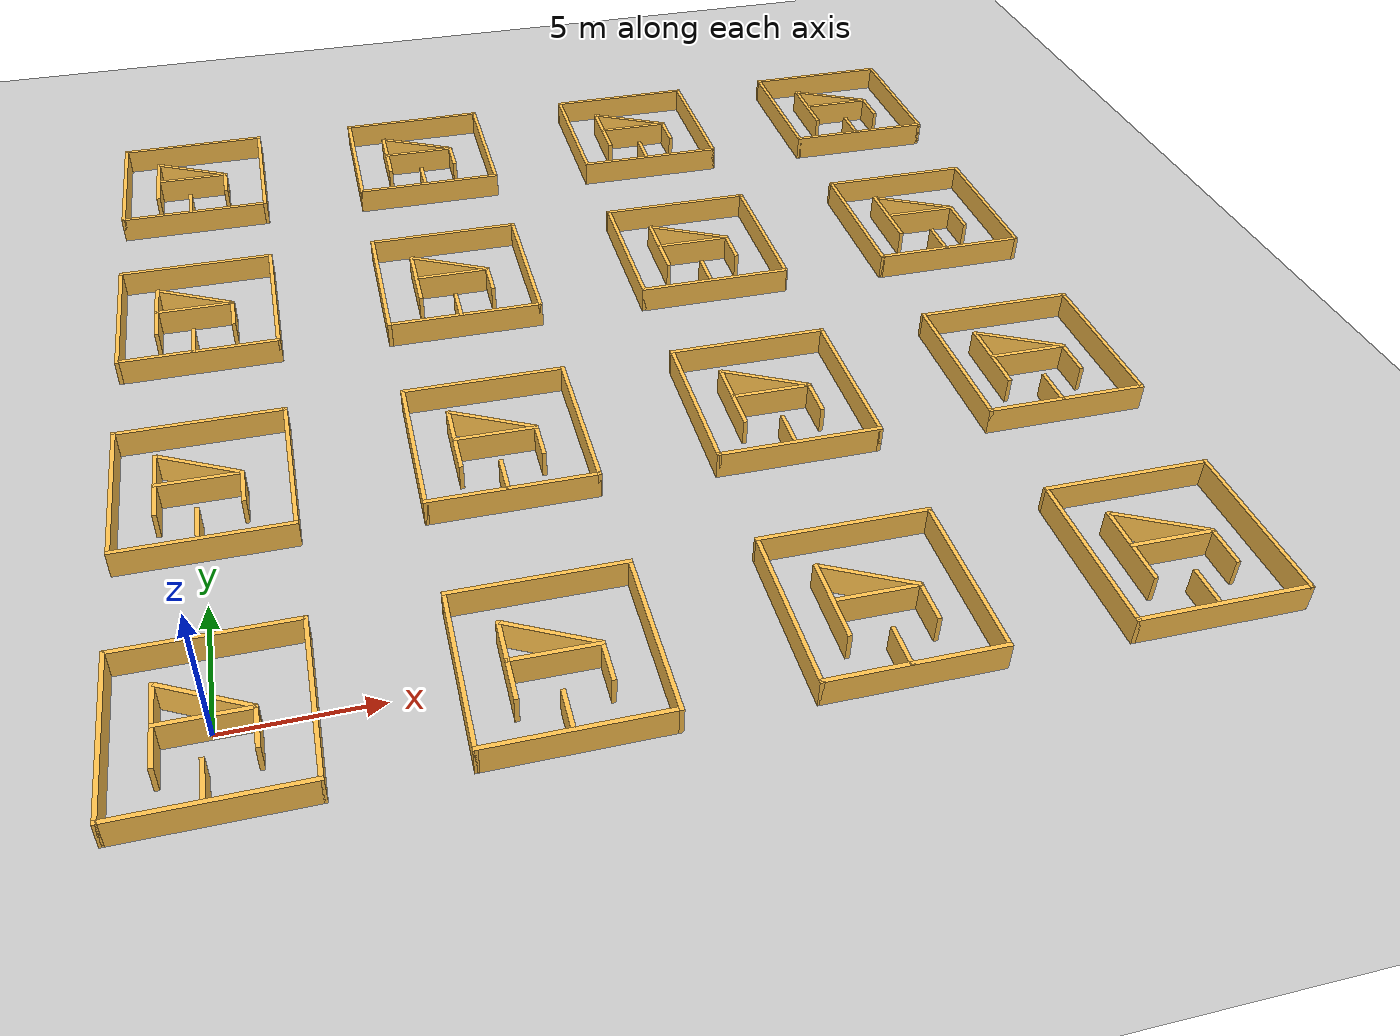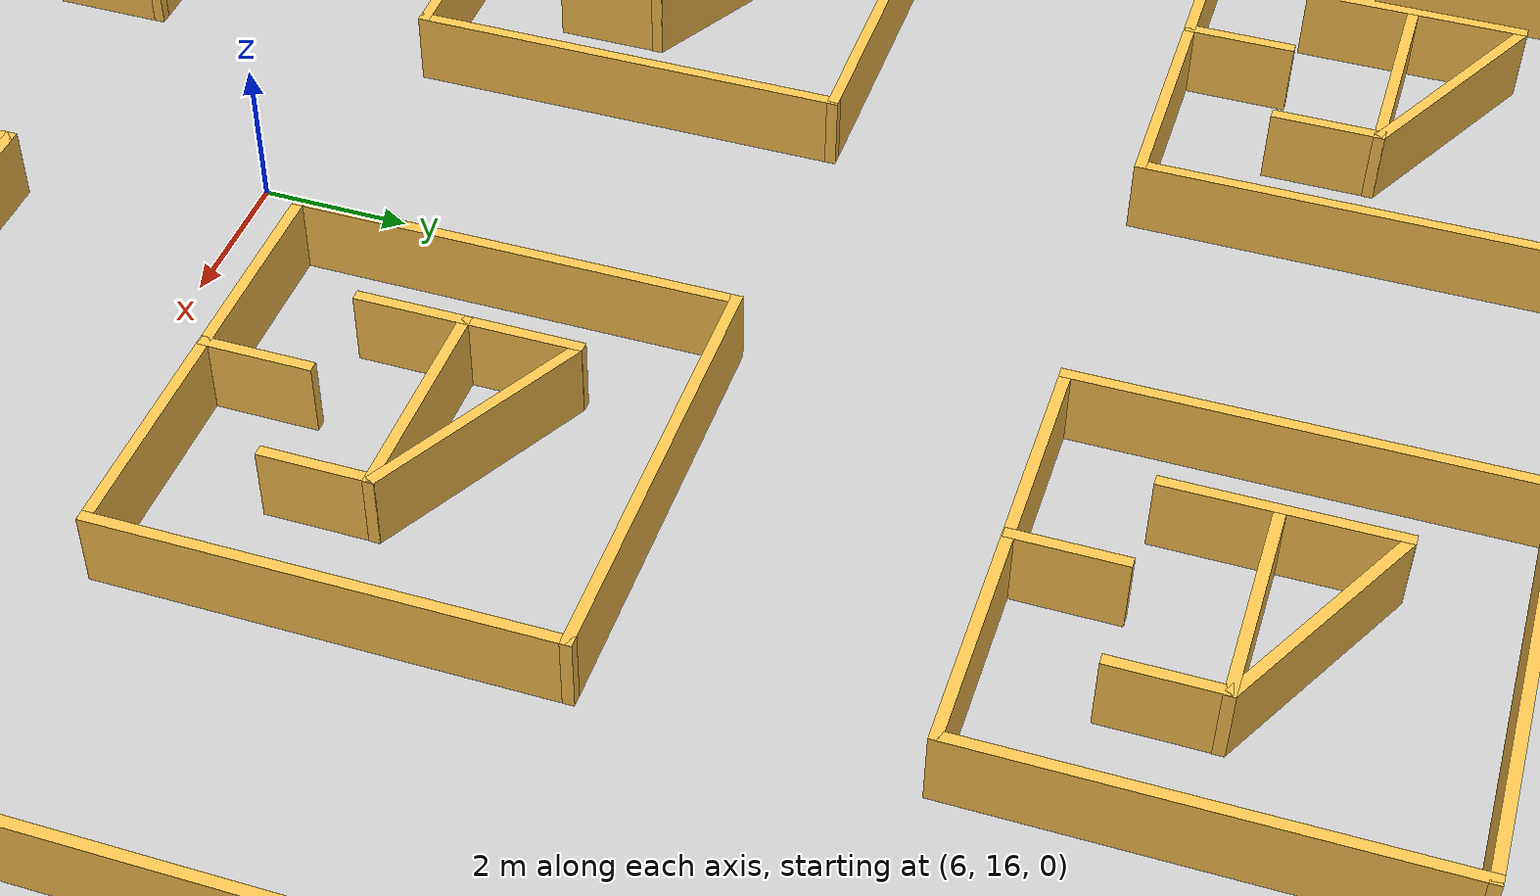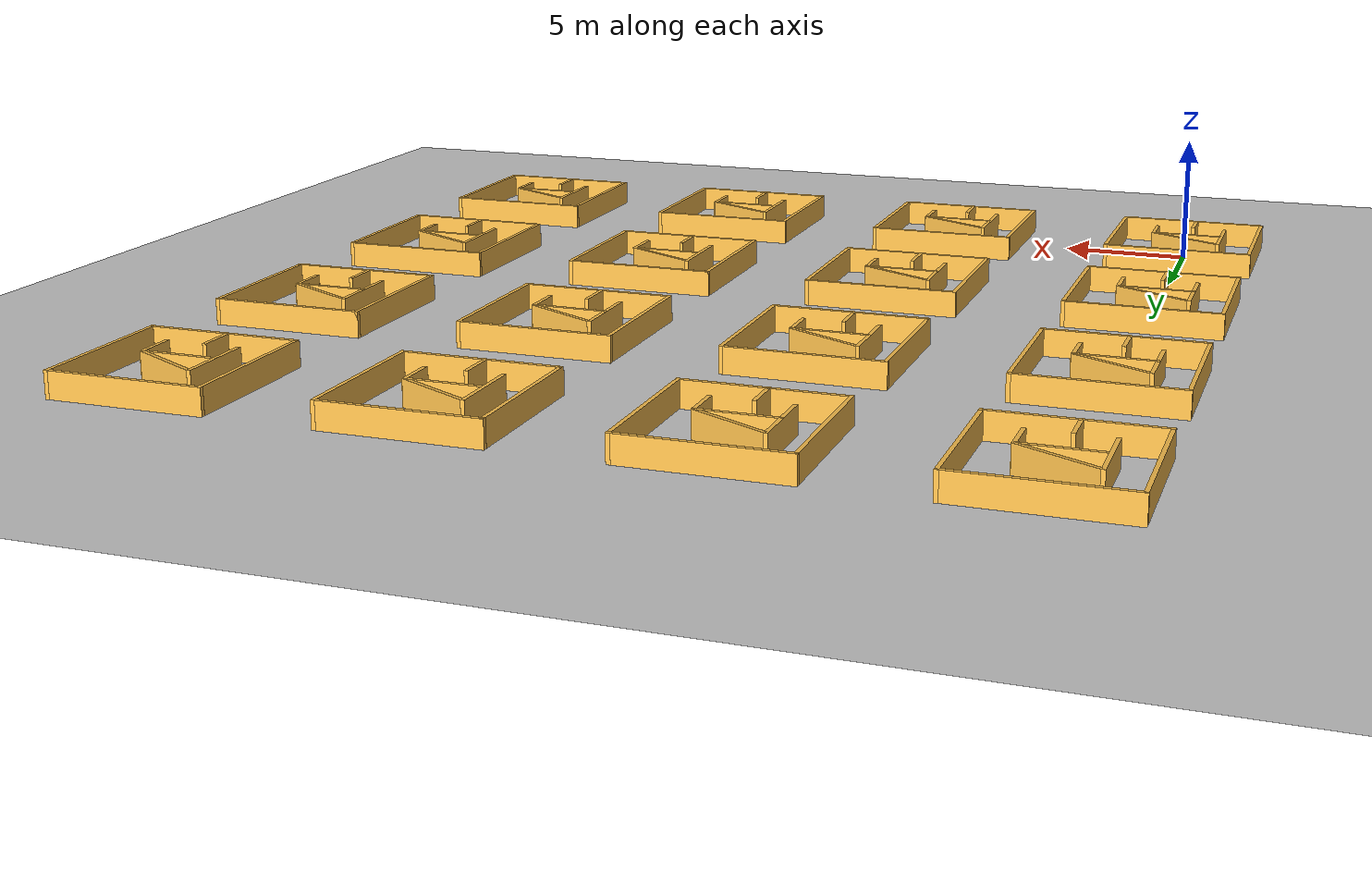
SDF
<sdf version="1.4">
 <world name="default">
  <plugin name="gazebo_ros_state" filename="libgazebo_ros_state.so">
   <ros>
    <namespace>/demo</namespace>
    <remapping>model_states:=model_states_demo</remapping>
    <remapping>link_states:=link_states_demo</remapping>
   </ros>
   <update_rate>1.0</update_rate>
  </plugin>
  <light name="sun" type="directional">
   <pose>0 0 10 0 -0 0</pose>
   <diffuse>0.8 0.8 0.8 1</diffuse>
   <specular>0.2 0.2 0.2 1</specular>
   <attenuation>
    <range>1000</range>
    <constant>0.9</constant>
    <linear>0.01</linear>
    <quadratic>0.001</quadratic>
   </attenuation>
   <direction>0.5 0.1 -0.9</direction>
  </light>
  <model name="ground_plane">
   <static>1</static>
   <link name="link">
    <collision name="collision">
     <geometry><plane><normal>0 0 1</normal><size>100 100</size></plane></geometry>
     <surface><friction><ode><mu>100</mu><mu2>50</mu2></ode></friction></surface>
    </collision>
    <visual name="visual">
     <cast_shadows>0</cast_shadows>
     <geometry><plane><normal>0 0 1</normal><size>100 100</size></plane></geometry>
     <material>
      <script><uri>file://media/materials/scripts/gazebo.material</uri><name>Gazebo/Grey</name></script>
     </material>
    </visual>
    <velocity_decay><linear>0</linear><angular>0</angular></velocity_decay>
   </link>
  </model>
  <scene><ambient>0.4 0.4 0.4 1</ambient><background>0.7 0.7 0.7 1</background><shadows>0</shadows></scene>
  <physics type="ode">
   <max_step_size>0.01</max_step_size>
   <real_time_factor>1</real_time_factor>
   <real_time_update_rate>100</real_time_update_rate>
   <gravity>0 0 -9.8</gravity>
  </physics>
  <include><uri>model://Circuit_ql_1</uri><name>Circuit_ql_1_0_0</name></include>
  <include><uri>model://Circuit_ql_1</uri><name>Circuit_ql_1_0_1</name><pose>10 0 0 0 0 0</pose></include>
  <include><uri>model://Circuit_ql_1</uri><name>Circuit_ql_1_0_2</name><pose>20 0 0 0 0 0</pose></include>
  <include><uri>model://Circuit_ql_1</uri><name>Circuit_ql_1_0_3</name><pose>30 0 0 0 0 0</pose></include>
  <include><uri>model://Circuit_ql_1</uri><name>Circuit_ql_1_1_0</name><pose>0 10 0 0 0 0</pose></include>
  <include><uri>model://Circuit_ql_1</uri><name>Circuit_ql_1_1_1</name><pose>10 10 0 0 0 0</pose></include>
  <include><uri>model://Circuit_ql_1</uri><name>Circuit_ql_1_1_2</name><pose>20 10 0 0 0 0</pose></include>
  <include><uri>model://Circuit_ql_1</uri><name>Circuit_ql_1_1_3</name><pose>30 10 0 0 0 0</pose></include>
  <include><uri>model://Circuit_ql_1</uri><name>Circuit_ql_1_2_0</name><pose>0 20 0 0 0 0</pose></include>
  <include><uri>model://Circuit_ql_1</uri><name>Circuit_ql_1_2_1</name><pose>10 20 0 0 0 0</pose></include>
  <include><uri>model://Circuit_ql_1</uri><name>Circuit_ql_1_2_2</name><pose>20 20 0 0 0 0</pose></include>
  <include><uri>model://Circuit_ql_1</uri><name>Circuit_ql_1_2_3</name><pose>30 20 0 0 0 0</pose></include>
  <include><uri>model://Circuit_ql_1</uri><name>Circuit_ql_1_3_0</name><pose>0 30 0 0 0 0</pose></include>
  <include><uri>model://Circuit_ql_1</uri><name>Circuit_ql_1_3_1</name><pose>10 30 0 0 0 0</pose></include>
  <include><uri>model://Circuit_ql_1</uri><name>Circuit_ql_1_3_2</name><pose>20 30 0 0 0 0</pose></include>
  <include><uri>model://Circuit_ql_1</uri><name>Circuit_ql_1_3_3</name><pose>30 30 0 0 0 0</pose></include>
 </world>
</sdf>

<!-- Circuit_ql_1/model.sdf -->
<sdf version='1.5'>
  <model name='Circuit_ql_1'>
    <link name='Wall_10'>
      <pose frame=''>-0.0015 2.925 0 0 -0 3.14159</pose>
      <self_collide>0</self_collide>
      <kinematic>0</kinematic>
      <visual name='Wall_10_Visual'>
        <pose frame=''>0 0 0.5 0 -0 0</pose>
        <geometry>
          <box>
            <size>6 0.15 1</size>
          </box>
        </geometry>
        <material>
          <script>
            <uri>file://media/materials/scripts/gazebo.material</uri>
            <name>Gazebo/Grey</name>
          </script>
          <ambient>1 0.764706 0.305882 1</ambient>
          <shader type='pixel'/>
          <diffuse>0.7 0.7 0.7 1</diffuse>
          <specular>0.01 0.01 0.01 1</specular>
          <emissive>0 0 0 1</emissive>
        </material>
        <cast_shadows>1</cast_shadows>
        <transparency>0</transparency>
      </visual>
      <collision name='Wall_10_Collision'>
        <laser_retro>0</laser_retro>
        <max_contacts>10</max_contacts>
        <pose frame=''>0 0 0.5 0 -0 0</pose>
        <geometry>
          <box>
            <size>6 0.15 1</size>
          </box>
        </geometry>
        <surface>
          <friction>
            <ode>
              <mu>1</mu>
              <mu2>1</mu2>
              <fdir1>0 0 0</fdir1>
              <slip1>0</slip1>
              <slip2>0</slip2>
            </ode>
          </friction>
          <bounce>
            <restitution_coefficient>0</restitution_coefficient>
            <threshold>1e+06</threshold>
          </bounce>
          <contact>
            <collide_without_contact>0</collide_without_contact>
            <collide_without_contact_bitmask>1</collide_without_contact_bitmask>
            <collide_bitmask>1</collide_bitmask>
            <ode>
              <soft_cfm>0</soft_cfm>
              <soft_erp>0.2</soft_erp>
              <kp>1e+13</kp>
              <kd>1</kd>
              <max_vel>0.01</max_vel>
              <min_depth>0</min_depth>
            </ode>
            <bullet>
              <split_impulse>1</split_impulse>
              <split_impulse_penetration_threshold>-0.01</split_impulse_penetration_threshold>
              <soft_cfm>0</soft_cfm>
              <soft_erp>0.2</soft_erp>
              <kp>1e+13</kp>
              <kd>1</kd>
            </bullet>
          </contact>
        </surface>
      </collision>
    </link>
    <link name='Wall_11'>
      <pose frame=''>-2.9265 0 0 0 0 -1.5708</pose>
      <self_collide>0</self_collide>
      <kinematic>0</kinematic>
      <visual name='Wall_11_Visual'>
        <pose frame=''>0 0 0.5 0 -0 0</pose>
        <geometry>
          <box>
            <size>6 0.15 1</size>
          </box>
        </geometry>
        <material>
          <script>
            <uri>file://media/materials/scripts/gazebo.material</uri>
            <name>Gazebo/Grey</name>
          </script>
          <ambient>1 0.764706 0.305882 1</ambient>
          <shader type='pixel'/>
          <diffuse>0.7 0.7 0.7 1</diffuse>
          <specular>0.01 0.01 0.01 1</specular>
          <emissive>0 0 0 1</emissive>
        </material>
        <cast_shadows>1</cast_shadows>
        <transparency>0</transparency>
      </visual>
      <collision name='Wall_11_Collision'>
        <laser_retro>0</laser_retro>
        <max_contacts>10</max_contacts>
        <pose frame=''>0 0 0.5 0 -0 0</pose>
        <geometry>
          <box>
            <size>6 0.15 1</size>
          </box>
        </geometry>
        <surface>
          <friction>
            <ode>
              <mu>1</mu>
              <mu2>1</mu2>
              <fdir1>0 0 0</fdir1>
              <slip1>0</slip1>
              <slip2>0</slip2>
            </ode>
          </friction>
          <bounce>
            <restitution_coefficient>0</restitution_coefficient>
            <threshold>1e+06</threshold>
          </bounce>
          <contact>
            <collide_without_contact>0</collide_without_contact>
            <collide_without_contact_bitmask>1</collide_without_contact_bitmask>
            <collide_bitmask>1</collide_bitmask>
            <ode>
              <soft_cfm>0</soft_cfm>
              <soft_erp>0.2</soft_erp>
              <kp>1e+13</kp>
              <kd>1</kd>
              <max_vel>0.01</max_vel>
              <min_depth>0</min_depth>
            </ode>
            <bullet>
              <split_impulse>1</split_impulse>
              <split_impulse_penetration_threshold>-0.01</split_impulse_penetration_threshold>
              <soft_cfm>0</soft_cfm>
              <soft_erp>0.2</soft_erp>
              <kp>1e+13</kp>
              <kd>1</kd>
            </bullet>
          </contact>
        </surface>
      </collision>
    </link>
    <link name='Wall_13'>
      <pose frame=''>-0.1665 -2.238 0 0 -0 1.5708</pose>
      <self_collide>0</self_collide>
      <kinematic>0</kinematic>
      <visual name='Wall_13_Visual'>
        <pose frame=''>0 0 0.5 0 -0 0</pose>
        <geometry>
          <box>
            <size>1.5 0.15 1</size>
          </box>
        </geometry>
        <material>
          <script>
            <uri>file://media/materials/scripts/gazebo.material</uri>
            <name>Gazebo/Grey</name>
          </script>
          <ambient>1 0.764706 0.305882 1</ambient>
          <shader type='pixel'/>
          <diffuse>0.7 0.7 0.7 1</diffuse>
          <specular>0.01 0.01 0.01 1</specular>
          <emissive>0 0 0 1</emissive>
        </material>
        <cast_shadows>1</cast_shadows>
        <transparency>0</transparency>
      </visual>
      <collision name='Wall_13_Collision'>
        <laser_retro>0</laser_retro>
        <max_contacts>10</max_contacts>
        <pose frame=''>0 0 0.5 0 -0 0</pose>
        <geometry>
          <box>
            <size>1.5 0.15 1</size>
          </box>
        </geometry>
        <surface>
          <friction>
            <ode>
              <mu>1</mu>
              <mu2>1</mu2>
              <fdir1>0 0 0</fdir1>
              <slip1>0</slip1>
              <slip2>0</slip2>
            </ode>
          </friction>
          <bounce>
            <restitution_coefficient>0</restitution_coefficient>
            <threshold>1e+06</threshold>
          </bounce>
          <contact>
            <collide_without_contact>0</collide_without_contact>
            <collide_without_contact_bitmask>1</collide_without_contact_bitmask>
            <collide_bitmask>1</collide_bitmask>
            <ode>
              <soft_cfm>0</soft_cfm>
              <soft_erp>0.2</soft_erp>
              <kp>1e+13</kp>
              <kd>1</kd>
              <max_vel>0.01</max_vel>
              <min_depth>0</min_depth>
            </ode>
            <bullet>
              <split_impulse>1</split_impulse>
              <split_impulse_penetration_threshold>-0.01</split_impulse_penetration_threshold>
              <soft_cfm>0</soft_cfm>
              <soft_erp>0.2</soft_erp>
              <kp>1e+13</kp>
              <kd>1</kd>
            </bullet>
          </contact>
        </surface>
      </collision>
    </link>
    <link name='Wall_13_clone'>
      <pose frame=''>1.32944 -0.77198 0 0 -0 1.5708</pose>
      <self_collide>0</self_collide>
      <kinematic>0</kinematic>
      <visual name='ModelPreview_1::Wall_13_clone::Wall_13_Visual'>
        <pose frame=''>0 0 0.5 0 -0 0</pose>
        <geometry>
          <box>
            <size>1.5 0.15 1</size>
          </box>
        </geometry>
        <material>
          <script>
            <uri>file://media/materials/scripts/gazebo.material</uri>
            <name>Gazebo/Grey</name>
          </script>
          <ambient>1 0.764706 0.305882 1</ambient>
          <shader type='pixel'/>
          <diffuse>0.7 0.7 0.7 1</diffuse>
          <specular>0.01 0.01 0.01 1</specular>
          <emissive>0 0 0 1</emissive>
        </material>
        <cast_shadows>1</cast_shadows>
        <transparency>0</transparency>
      </visual>
      <collision name='Wall_13_Collision'>
        <laser_retro>0</laser_retro>
        <max_contacts>10</max_contacts>
        <pose frame=''>0 0 0.5 0 -0 0</pose>
        <geometry>
          <box>
            <size>1.5 0.15 1</size>
          </box>
        </geometry>
        <surface>
          <friction>
            <ode>
              <mu>1</mu>
              <mu2>1</mu2>
              <fdir1>0 0 0</fdir1>
              <slip1>0</slip1>
              <slip2>0</slip2>
            </ode>
          </friction>
          <bounce>
            <restitution_coefficient>0</restitution_coefficient>
            <threshold>1e+06</threshold>
          </bounce>
          <contact>
            <collide_without_contact>0</collide_without_contact>
            <collide_without_contact_bitmask>1</collide_without_contact_bitmask>
            <collide_bitmask>1</collide_bitmask>
            <ode>
              <soft_cfm>0</soft_cfm>
              <soft_erp>0.2</soft_erp>
              <kp>1e+13</kp>
              <kd>1</kd>
              <max_vel>0.01</max_vel>
              <min_depth>0</min_depth>
            </ode>
            <bullet>
              <split_impulse>1</split_impulse>
              <split_impulse_penetration_threshold>-0.01</split_impulse_penetration_threshold>
              <soft_cfm>0</soft_cfm>
              <soft_erp>0.2</soft_erp>
              <kp>1e+13</kp>
              <kd>1</kd>
            </bullet>
          </contact>
        </surface>
      </collision>
    </link>
    <link name='Wall_15'>
      <pose frame=''>-1.51922 -0.038071 0 0 -0 1.5708</pose>
      <self_collide>0</self_collide>
      <kinematic>0</kinematic>
      <visual name='Wall_15_Visual'>
        <pose frame=''>0 0 0.5 0 -0 0</pose>
        <geometry>
          <box>
            <size>3 0.15 1</size>
          </box>
        </geometry>
        <material>
          <script>
            <uri>file://media/materials/scripts/gazebo.material</uri>
            <name>Gazebo/Grey</name>
          </script>
          <ambient>1 0.764706 0.305882 1</ambient>
          <shader type='pixel'/>
          <diffuse>0.7 0.7 0.7 1</diffuse>
          <specular>0.01 0.01 0.01 1</specular>
          <emissive>0 0 0 1</emissive>
        </material>
        <cast_shadows>1</cast_shadows>
        <transparency>0</transparency>
      </visual>
      <collision name='Wall_15_Collision'>
        <laser_retro>0</laser_retro>
        <max_contacts>10</max_contacts>
        <pose frame=''>0 0 0.5 0 -0 0</pose>
        <geometry>
          <box>
            <size>3 0.15 1</size>
          </box>
        </geometry>
        <surface>
          <friction>
            <ode>
              <mu>1</mu>
              <mu2>1</mu2>
              <fdir1>0 0 0</fdir1>
              <slip1>0</slip1>
              <slip2>0</slip2>
            </ode>
          </friction>
          <bounce>
            <restitution_coefficient>0</restitution_coefficient>
            <threshold>1e+06</threshold>
          </bounce>
          <contact>
            <collide_without_contact>0</collide_without_contact>
            <collide_without_contact_bitmask>1</collide_without_contact_bitmask>
            <collide_bitmask>1</collide_bitmask>
            <ode>
              <soft_cfm>0</soft_cfm>
              <soft_erp>0.2</soft_erp>
              <kp>1e+13</kp>
              <kd>1</kd>
              <max_vel>0.01</max_vel>
              <min_depth>0</min_depth>
            </ode>
            <bullet>
              <split_impulse>1</split_impulse>
              <split_impulse_penetration_threshold>-0.01</split_impulse_penetration_threshold>
              <soft_cfm>0</soft_cfm>
              <soft_erp>0.2</soft_erp>
              <kp>1e+13</kp>
              <kd>1</kd>
            </bullet>
          </contact>
        </surface>
      </collision>
    </link>
    <link name='Wall_15_clone'>
      <pose frame=''>-0.089166 -0.090738 0 0 0 -0.004296</pose>
      <self_collide>0</self_collide>
      <kinematic>0</kinematic>
      <visual name='ModelPreview_1::Wall_15_clone::Wall_15_Visual'>
        <pose frame=''>0 0 0.5 0 -0 0</pose>
        <geometry>
          <box>
            <size>3 0.15 1</size>
          </box>
        </geometry>
        <material>
          <script>
            <uri>file://media/materials/scripts/gazebo.material</uri>
            <name>Gazebo/Grey</name>
          </script>
          <ambient>1 0.764706 0.305882 1</ambient>
          <shader type='pixel'/>
          <diffuse>0.7 0.7 0.7 1</diffuse>
          <specular>0.01 0.01 0.01 1</specular>
          <emissive>0 0 0 1</emissive>
        </material>
        <cast_shadows>1</cast_shadows>
        <transparency>0</transparency>
      </visual>
      <collision name='Wall_15_Collision'>
        <laser_retro>0</laser_retro>
        <max_contacts>10</max_contacts>
        <pose frame=''>0 0 0.5 0 -0 0</pose>
        <geometry>
          <box>
            <size>3 0.15 1</size>
          </box>
        </geometry>
        <surface>
          <friction>
            <ode>
              <mu>1</mu>
              <mu2>1</mu2>
              <fdir1>0 0 0</fdir1>
              <slip1>0</slip1>
              <slip2>0</slip2>
            </ode>
          </friction>
          <bounce>
            <restitution_coefficient>0</restitution_coefficient>
            <threshold>1e+06</threshold>
          </bounce>
          <contact>
            <collide_without_contact>0</collide_without_contact>
            <collide_without_contact_bitmask>1</collide_without_contact_bitmask>
            <collide_bitmask>1</collide_bitmask>
            <ode>
              <soft_cfm>0</soft_cfm>
              <soft_erp>0.2</soft_erp>
              <kp>1e+13</kp>
              <kd>1</kd>
              <max_vel>0.01</max_vel>
              <min_depth>0</min_depth>
            </ode>
            <bullet>
              <split_impulse>1</split_impulse>
              <split_impulse_penetration_threshold>-0.01</split_impulse_penetration_threshold>
              <soft_cfm>0</soft_cfm>
              <soft_erp>0.2</soft_erp>
              <kp>1e+13</kp>
              <kd>1</kd>
            </bullet>
          </contact>
        </surface>
      </collision>
    </link>
    <link name='Wall_15_clone_0'>
      <pose frame=''>-0.053217 0.650721 0 0 0 -0.479256</pose>
      <self_collide>0</self_collide>
      <kinematic>0</kinematic>
      <visual name='ModelPreview_1::Wall_15_clone_0::Wall_15_Visual'>
        <pose frame=''>0 0 0.5 0 -0 0</pose>
        <geometry>
          <box>
            <size>3.22377 0.15 1</size>
          </box>
        </geometry>
        <material>
          <script>
            <uri>file://media/materials/scripts/gazebo.material</uri>
            <name>Gazebo/Grey</name>
          </script>
          <ambient>1 0.764706 0.305882 1</ambient>
          <shader type='pixel'/>
          <diffuse>0.7 0.7 0.7 1</diffuse>
          <specular>0.01 0.01 0.01 1</specular>
          <emissive>0 0 0 1</emissive>
        </material>
        <cast_shadows>1</cast_shadows>
        <transparency>0</transparency>
      </visual>
      <collision name='Wall_15_Collision'>
        <laser_retro>0</laser_retro>
        <max_contacts>10</max_contacts>
        <pose frame=''>0 0 0.5 0 -0 0</pose>
        <geometry>
          <box>
            <size>3.22377 0.15 1</size>
          </box>
        </geometry>
        <surface>
          <friction>
            <ode>
              <mu>1</mu>
              <mu2>1</mu2>
              <fdir1>0 0 0</fdir1>
              <slip1>0</slip1>
              <slip2>0</slip2>
            </ode>
          </friction>
          <bounce>
            <restitution_coefficient>0</restitution_coefficient>
            <threshold>1e+06</threshold>
          </bounce>
          <contact>
            <collide_without_contact>0</collide_without_contact>
            <collide_without_contact_bitmask>1</collide_without_contact_bitmask>
            <collide_bitmask>1</collide_bitmask>
            <ode>
              <soft_cfm>0</soft_cfm>
              <soft_erp>0.2</soft_erp>
              <kp>1e+13</kp>
              <kd>1</kd>
              <max_vel>0.01</max_vel>
              <min_depth>0</min_depth>
            </ode>
            <bullet>
              <split_impulse>1</split_impulse>
              <split_impulse_penetration_threshold>-0.01</split_impulse_penetration_threshold>
              <soft_cfm>0</soft_cfm>
              <soft_erp>0.2</soft_erp>
              <kp>1e+13</kp>
              <kd>1</kd>
            </bullet>
          </contact>
        </surface>
      </collision>
    </link>
    <link name='Wall_6'>
      <pose frame=''>-0.0015 -2.925 0 0 -0 0</pose>
      <self_collide>0</self_collide>
      <kinematic>0</kinematic>
      <visual name='Wall_6_Visual'>
        <pose frame=''>0 0 0.5 0 -0 0</pose>
        <geometry>
          <box>
            <size>6 0.15 1</size>
          </box>
        </geometry>
        <material>
          <script>
            <uri>file://media/materials/scripts/gazebo.material</uri>
            <name>Gazebo/Grey</name>
          </script>
          <ambient>1 0.764706 0.305882 1</ambient>
          <shader type='pixel'/>
          <diffuse>0.7 0.7 0.7 1</diffuse>
          <specular>0.01 0.01 0.01 1</specular>
          <emissive>0 0 0 1</emissive>
        </material>
        <cast_shadows>1</cast_shadows>
        <transparency>0</transparency>
      </visual>
      <collision name='Wall_6_Collision'>
        <laser_retro>0</laser_retro>
        <max_contacts>10</max_contacts>
        <pose frame=''>0 0 0.5 0 -0 0</pose>
        <geometry>
          <box>
            <size>6 0.15 1</size>
          </box>
        </geometry>
        <surface>
          <friction>
            <ode>
              <mu>1</mu>
              <mu2>1</mu2>
              <fdir1>0 0 0</fdir1>
              <slip1>0</slip1>
              <slip2>0</slip2>
            </ode>
          </friction>
          <bounce>
            <restitution_coefficient>0</restitution_coefficient>
            <threshold>1e+06</threshold>
          </bounce>
          <contact>
            <collide_without_contact>0</collide_without_contact>
            <collide_without_contact_bitmask>1</collide_without_contact_bitmask>
            <collide_bitmask>1</collide_bitmask>
            <ode>
              <soft_cfm>0</soft_cfm>
              <soft_erp>0.2</soft_erp>
              <kp>1e+13</kp>
              <kd>1</kd>
              <max_vel>0.01</max_vel>
              <min_depth>0</min_depth>
            </ode>
            <bullet>
              <split_impulse>1</split_impulse>
              <split_impulse_penetration_threshold>-0.01</split_impulse_penetration_threshold>
              <soft_cfm>0</soft_cfm>
              <soft_erp>0.2</soft_erp>
              <kp>1e+13</kp>
              <kd>1</kd>
            </bullet>
          </contact>
        </surface>
      </collision>
    </link>
    <link name='Wall_7'>
      <pose frame=''>2.9235 0 0 0 -0 1.5708</pose>
      <self_collide>0</self_collide>
      <kinematic>0</kinematic>
      <visual name='Wall_7_Visual'>
        <pose frame=''>0 0 0.5 0 -0 0</pose>
        <geometry>
          <box>
            <size>6 0.15 1</size>
          </box>
        </geometry>
        <material>
          <script>
            <uri>file://media/materials/scripts/gazebo.material</uri>
            <name>Gazebo/Grey</name>
          </script>
          <ambient>1 0.764706 0.305882 1</ambient>
          <shader type='pixel'/>
          <diffuse>0.7 0.7 0.7 1</diffuse>
          <specular>0.01 0.01 0.01 1</specular>
          <emissive>0 0 0 1</emissive>
        </material>
        <cast_shadows>1</cast_shadows>
        <transparency>0</transparency>
      </visual>
      <collision name='Wall_7_Collision'>
        <laser_retro>0</laser_retro>
        <max_contacts>10</max_contacts>
        <pose frame=''>0 0 0.5 0 -0 0</pose>
        <geometry>
          <box>
            <size>6 0.15 1</size>
          </box>
        </geometry>
        <surface>
          <friction>
            <ode>
              <mu>1</mu>
              <mu2>1</mu2>
              <fdir1>0 0 0</fdir1>
              <slip1>0</slip1>
              <slip2>0</slip2>
            </ode>
          </friction>
          <bounce>
            <restitution_coefficient>0</restitution_coefficient>
            <threshold>1e+06</threshold>
          </bounce>
          <contact>
            <collide_without_contact>0</collide_without_contact>
            <collide_without_contact_bitmask>1</collide_without_contact_bitmask>
            <collide_bitmask>1</collide_bitmask>
            <ode>
              <soft_cfm>0</soft_cfm>
              <soft_erp>0.2</soft_erp>
              <kp>1e+13</kp>
              <kd>1</kd>
              <max_vel>0.01</max_vel>
              <min_depth>0</min_depth>
            </ode>
            <bullet>
              <split_impulse>1</split_impulse>
              <split_impulse_penetration_threshold>-0.01</split_impulse_penetration_threshold>
              <soft_cfm>0</soft_cfm>
              <soft_erp>0.2</soft_erp>
              <kp>1e+13</kp>
              <kd>1</kd>
            </bullet>
          </contact>
        </surface>
      </collision>
    </link>
    <static>1</static>
    <allow_auto_disable>1</allow_auto_disable>
  </model>
</sdf>
